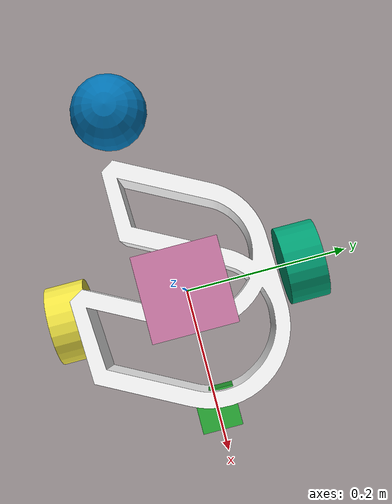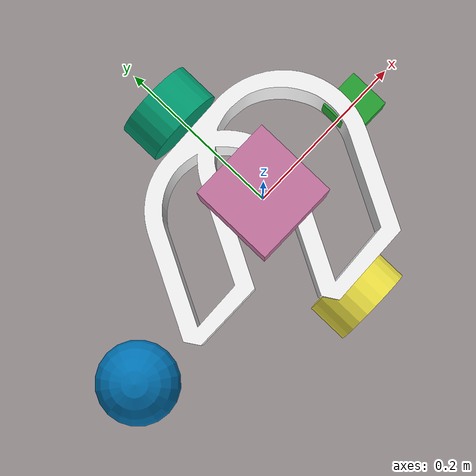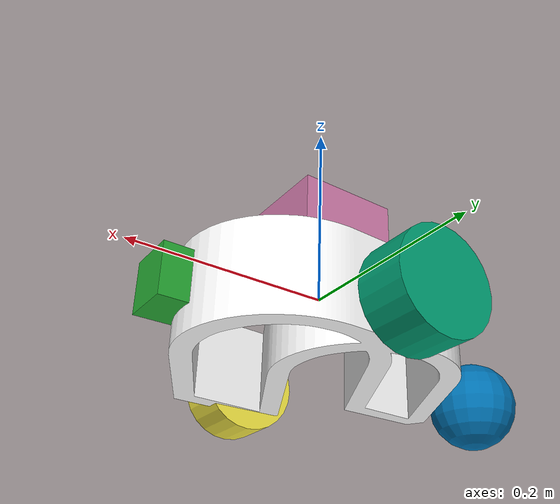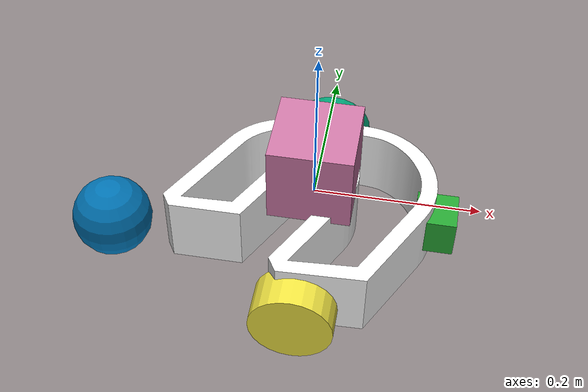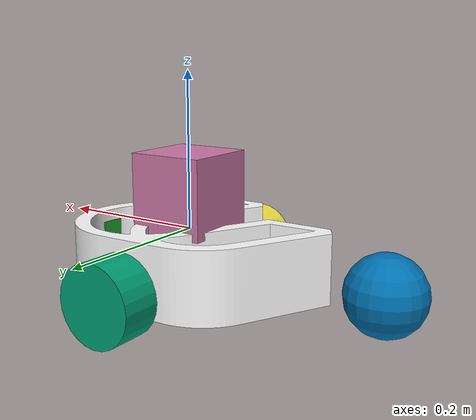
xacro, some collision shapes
<?xml version='1.0'?>

<robot name="ultra_udacity_bot" xmlns:xacro="http://www.ros.org/wiki/xacro">

  <xacro:include filename="$(find udacity_bot)/urdf/ultra_udacity_bot.gazebo" />

  <link name="robot_footprint"></link>

  <joint name="robot_footprint_joint" type="fixed">
    <origin xyz="0 0 0" rpy="0 0 0" />
    <parent link="robot_footprint"/>
    <child link="chassis" />
  </joint>

  <link name='chassis'>
    <pose>0 0 0.1 0 0 0</pose>

    <material>Gazebo/Black</material>

    <inertial>
      <mass value="1.0"/>
      <origin xyz="0.0 0 0" rpy=" 0 0 0"/>
      <inertia
          ixx="0.1" ixy="0" ixz="0"
          iyy="0.1" iyz="0"
          izz="0.1"
      />
    </inertial>

    <collision name='collision'>
      <origin xyz="0 0 -.08" rpy=" 0 0 210"/>
      <geometry>
        <mesh filename="package://udacity_bot/meshes/udacity.dae"  scale=".45 .45 .45"/>
      </geometry>
    </collision>

    <visual name='chassis_visual'>
      <origin xyz="0 0 -.08" rpy=" 0 0 210"/>
      <geometry>
      	<!-- model is 60 mm tall, 20 mm thick -->
        <mesh filename="package://udacity_bot/meshes/udacity.dae" scale=".45 .45 .45"/>
      </geometry>
    </visual>

  </link>

  <link name='left_wheel'>
    <pose>0 0 0 0 0 0</pose>

    <inertial>
      <mass value="5.0"/>
      <origin xyz="0.0 0 0" rpy=" 0 1.5707 1.5707"/>
      <inertia
          ixx="0.1" ixy="0" ixz="0"
          iyy="0.1" iyz="0"
          izz="0.1"
      />
    </inertial>

    <collision name='left_wheel_collision'>
      <origin xyz="0 0 0" rpy=" 0 1.5707 1.5707"/>
      <geometry>
        <cylinder radius="0.05" length="0.05"/>
      </geometry>
    </collision>

    <visual name='left_wheel_visual'>
      <origin xyz="0 0 0" rpy=" 0 1.5707 1.5707"/>
      <geometry>
        <cylinder radius="0.05" length="0.05"/>
      </geometry>
    </visual>

  </link>

  <link name='right_wheel'>
    <pose>0 0 0 0 0 0</pose>

    <inertial>
      <mass value="5.0"/>
      <origin xyz="0.0 0 0" rpy=" 0 1.5707 -1.5707"/>
      <inertia
          ixx="0.1" ixy="0" ixz="0"
          iyy="0.1" iyz="0"
          izz="0.1"
      />
    </inertial>

    <collision name='right_wheel_collision'>
      <origin xyz="0 0 0" rpy=" 0 1.5707 -1.5707"/>
      <geometry>
        <cylinder radius="0.05" length="0.05"/>
      </geometry>
    </collision>

    <visual name='right_wheel_visual'>
      <origin xyz="0 0 0" rpy=" 0 1.5707 -1.5707"/>
      <geometry>
        <cylinder radius="0.05" length="0.05"/>
      </geometry>
    </visual>

  </link>

  <link name='rear_caster'>
    <pose>0 0 0 0 0 0</pose>

    <inertial>
      <mass value="5.0"/>
      <origin xyz="0.0 0 0" rpy=" 0 1.5707 -1.5707"/>
      <inertia
          ixx="0.1" ixy="0" ixz="0"
          iyy="0.1" iyz="0"
          izz="0.1"
      />
    </inertial>

    <collision name='back_caster_collision'>
      <origin xyz="0 0 0" rpy=" 0 0 0"/>
      <geometry>
        <sphere radius="0.050"/>
      </geometry>
      <surface>
        <friction>
          <ode>
            <mu>0</mu>
            <mu2>0</mu2>
            <slip1>1.0</slip1>
            <slip2>1.0</slip2>
          </ode>
        </friction>
      </surface>
    </collision>

    <visual name='back_caster_visual'>
      <origin xyz="0 0 0" rpy=" 0 0 0"/>
      <geometry>
        <sphere radius="0.05"/>
      </geometry>
    </visual>

  </link>

  <joint type="fixed" name="rear_caster_link">
    <origin xyz="-0.25 -.04 -0.05" rpy=" 0 0 0"/>
    <child link="rear_caster"/>
    <parent link="chassis"/>
  </joint>

  <joint type="continuous" name="left_wheel_hinge">
    <origin xyz="0 0.15 -.05" rpy="0 0 0"/>
    <child link="left_wheel"/>
    <parent link="chassis"/>
    <axis xyz="0 1 0" rpy="0 0 0"/>
    <limit effort="10000" velocity="1000"/>
    <joint_properties damping="1.0" friction="1.0"/>
  </joint>

  <joint type="continuous" name="right_wheel_hinge">
    <origin xyz="0 -0.15 -.05" rpy="0 0 0"/>
    <child link="right_wheel"/>
    <parent link="chassis"/>
    <axis xyz="0 1 0" rpy="0 0 0"/>
    <limit effort="10000" velocity="1000"/>
    <joint_properties damping="1.0" friction="1.0"/>
  </joint>

  <link name="camera">
    <pose>0 0 0 0 0 0</pose>

    <inertial>
      <mass value="1.0"/>
      <origin xyz="0 0 0" rpy=" 0 0 0"/>
      <inertia
          ixx="1e-6" ixy="0" ixz="0"
          iyy="1e-6" iyz="0"
          izz="1e-6"
      />
    </inertial>

    <collision name='camera_collision'>
      <origin xyz="0 0 0" rpy=" 0 0 0"/>
      <geometry>
        <box size="0.05 0.05 0.05"/>
      </geometry>
    </collision>

    <visual name='camera_visual'>
      <origin xyz="0 0 0" rpy=" 0 0 0"/>
      <geometry>
        <box size="0.05 0.05 0.05"/>
      </geometry>
    </visual>

  </link>

  <joint type="fixed" name="camera_joint">
    <origin xyz="0.15 0 -.03" rpy="0 0 0"/>
    <child link="camera"/>
    <parent link="chassis"/>
  </joint>

  <link name="hokuyo">
    <pose>0 0 0 0 0 0</pose>

    <inertial>
      <mass value="1.0"/>
      <origin xyz="0 0 0" rpy=" 0 0 0"/>
      <inertia
          ixx="1e-6" ixy="0" ixz="0"
          iyy="1e-6" iyz="0"
          izz="1e-6"
      />
    </inertial>

    <collision name="hokuyo_collision">
      <origin xyz="0 0 0" rpy=" 0 0 0"/>
      <geometry>
        <box size="0.1 0.1 0.1"/>
      </geometry>
    </collision>

    <visual name="hokuyo_visual">
      <origin xyz="0 0 0" rpy=" 0 0 0"/>
      <geometry>
        <mesh filename="package://udacity_bot/meshes/hokuyo.dae"/>
      </geometry>
    </visual>

  </link>

  <joint type="fixed" name="hokuyo_joint">
    <origin xyz="0 0 0.05" rpy="0 0 0"/>
    <child link="hokuyo"/>
    <parent link="chassis"/>
  </joint>

</robot>
